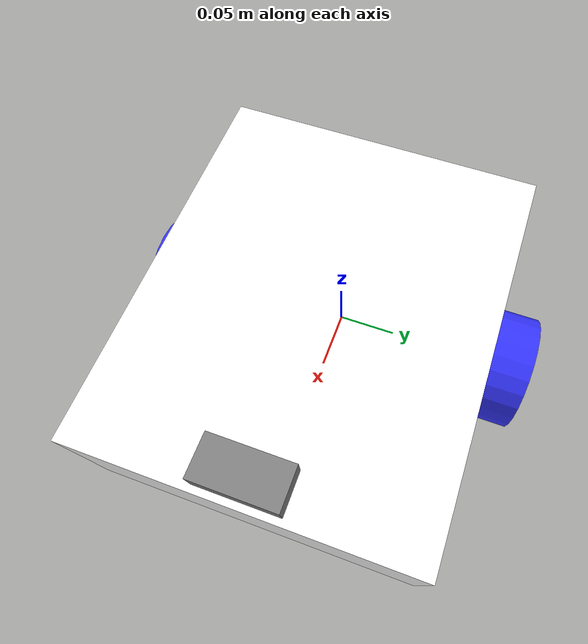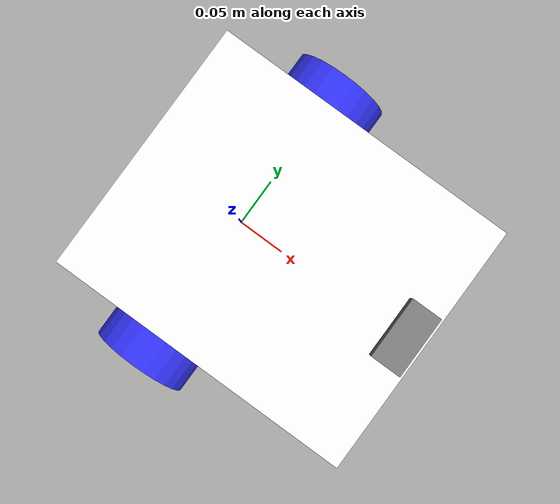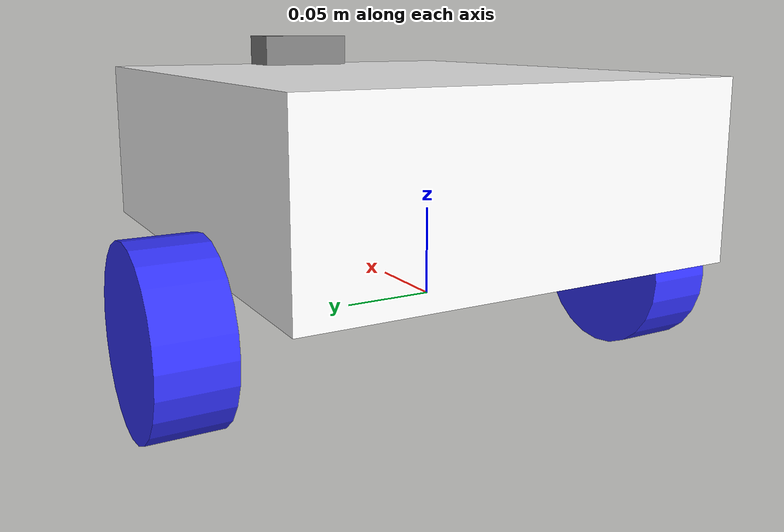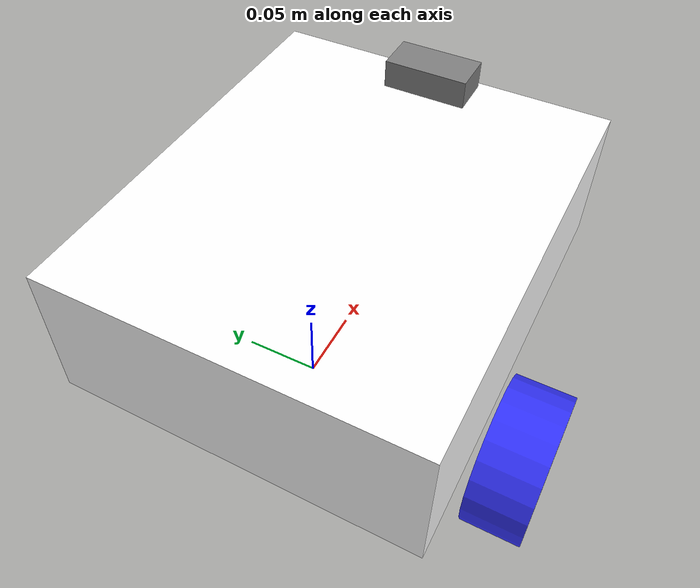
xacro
<?xml version="1.0"?>
<robot xmlns:xacro="http://www.ros.org/wiki/xacro" name="ball_tracker_robot">

  <!-- ========== MATERIALS ========== -->
  <material name="white">  <color rgba="1 1 1 1"/>        </material>
  <material name="blue">   <color rgba="0.2 0.2 1 1"/>    </material>
  <material name="black">  <color rgba="0 0 0 1"/>        </material>
  <material name="grey">   <color rgba="0.5 0.5 0.5 1"/> </material>

  <!-- ========== BASE LINK (rotation centre between drive wheels) ========== -->
  <link name="base_link"/>

  <!-- ========== CHASSIS ========== -->
  <joint name="chassis_joint" type="fixed">
    <parent link="base_link"/>
    <child  link="chassis"/>
    <origin xyz="-0.1 0 0"/>
  </joint>

  <link name="chassis">
    <visual>
      <origin xyz="0.15 0 0.075"/>
      <geometry><box size="0.30 0.25 0.10"/></geometry>
      <material name="white"/>
    </visual>
    <collision>
      <origin xyz="0.15 0 0.075"/>
      <geometry><box size="0.30 0.25 0.10"/></geometry>
    </collision>
    <inertial>
      <mass value="1.0"/>
      <origin xyz="0.15 0 0.075"/>
      <inertia ixx="1e-2" ixy="0" ixz="0" iyy="1e-2" iyz="0" izz="1e-2"/>
    </inertial>
  </link>

  <!-- ========== LEFT WHEEL ========== -->
  <joint name="left_wheel_joint" type="continuous">
    <parent link="base_link"/>
    <child  link="left_wheel"/>
    <origin xyz="0 0.15 0" rpy="-1.5708 0 0"/>
    <axis xyz="0 0 1"/>
  </joint>

  <link name="left_wheel">
    <visual>
      <geometry><cylinder length="0.04" radius="0.05"/></geometry>
      <material name="blue"/>
    </visual>
    <collision>
      <geometry><cylinder length="0.04" radius="0.05"/></geometry>
    </collision>
    <inertial>
      <mass value="0.1"/>
      <inertia ixx="1e-4" ixy="0" ixz="0" iyy="1e-4" iyz="0" izz="1e-4"/>
    </inertial>
  </link>

  <!-- ========== RIGHT WHEEL ========== -->
  <joint name="right_wheel_joint" type="continuous">
    <parent link="base_link"/>
    <child  link="right_wheel"/>
    <origin xyz="0 -0.15 0" rpy="1.5708 0 0"/>
    <axis xyz="0 0 -1"/>
  </joint>

  <link name="right_wheel">
    <visual>
      <geometry><cylinder length="0.04" radius="0.05"/></geometry>
      <material name="blue"/>
    </visual>
    <collision>
      <geometry><cylinder length="0.04" radius="0.05"/></geometry>
    </collision>
    <inertial>
      <mass value="0.1"/>
      <inertia ixx="1e-4" ixy="0" ixz="0" iyy="1e-4" iyz="0" izz="1e-4"/>
    </inertial>
  </link>

  <!-- ========== CASTER WHEEL ========== -->
  <joint name="caster_wheel_joint" type="fixed">
    <parent link="chassis"/>
    <child  link="caster_wheel"/>
    <origin xyz="0.24 0 0"/>
  </joint>

  <link name="caster_wheel">
    <visual>
      <geometry><sphere radius="0.025"/></geometry>
      <material name="black"/>
    </visual>
    <collision>
      <geometry><sphere radius="0.025"/></geometry>
    </collision>
    <inertial>
      <mass value="0.05"/>
      <inertia ixx="1e-5" ixy="0" ixz="0" iyy="1e-5" iyz="0" izz="1e-5"/>
    </inertial>
  </link>

  <!-- ========== CAMERA MOUNT ========== -->
  <joint name="camera_joint" type="fixed">
    <parent link="chassis"/>
    <child  link="camera_link"/>
    <origin xyz="0.28 0 0.13"/>
  </joint>

  <link name="camera_link">
    <visual>
      <geometry><box size="0.03 0.06 0.03"/></geometry>
      <material name="grey"/>
    </visual>
    <collision>
      <geometry><box size="0.03 0.06 0.03"/></geometry>
    </collision>
    <inertial>
      <mass value="0.01"/>
      <inertia ixx="1e-6" ixy="0" ixz="0" iyy="1e-6" iyz="0" izz="1e-6"/>
    </inertial>
  </link>

  <!-- Camera optical frame (Z forward, X right, Y down — ROS convention) -->
  <joint name="camera_optical_joint" type="fixed">
    <parent link="camera_link"/>
    <child  link="camera_optical_link"/>
    <origin rpy="-1.5708 0 -1.5708"/>
  </joint>

  <link name="camera_optical_link"/>

  <!-- ========== GAZEBO: COLOURS ========== -->
  <gazebo reference="chassis">      <material>Gazebo/White</material> </gazebo>
  <gazebo reference="left_wheel">   <material>Gazebo/Blue</material>  </gazebo>
  <gazebo reference="right_wheel">  <material>Gazebo/Blue</material>  </gazebo>
  <gazebo reference="caster_wheel">
    <material>Gazebo/Black</material>
    <mu1 value="0.001"/>
    <mu2 value="0.001"/>
  </gazebo>
  <gazebo reference="camera_link">  <material>Gazebo/Grey</material>  </gazebo>

  <!-- ========== GAZEBO: DIFF-DRIVE PLUGIN ========== -->
  <gazebo>
    <plugin name="diff_drive" filename="libgazebo_ros_diff_drive.so">
      <left_joint>left_wheel_joint</left_joint>
      <right_joint>right_wheel_joint</right_joint>
      <wheel_separation>0.30</wheel_separation>
      <wheel_diameter>0.10</wheel_diameter>
      <max_wheel_torque>20</max_wheel_torque>
      <max_wheel_acceleration>1.0</max_wheel_acceleration>
      <odometry_frame>odom</odometry_frame>
      <robot_base_frame>base_link</robot_base_frame>
      <publish_odom>true</publish_odom>
      <publish_odom_tf>true</publish_odom_tf>
      <publish_wheel_tf>true</publish_wheel_tf>
    </plugin>
  </gazebo>

  <!-- ========== GAZEBO: CAMERA PLUGIN ========== -->
  <gazebo reference="camera_link">
    <sensor type="camera" name="camera">
      <update_rate>10</update_rate>
      <camera name="head">
        <horizontal_fov>1.3962634</horizontal_fov>
        <image>
          <width>320</width>
          <height>240</height>
          <format>R8G8B8</format>
        </image>
        <clip>
          <near>0.02</near>
          <far>20</far>
        </clip>
      </camera>
      <plugin name="camera_controller" filename="libgazebo_ros_camera.so">
        <frame_name>camera_optical_link</frame_name>
        <min_depth>0.1</min_depth>
        <max_depth>20.0</max_depth>
      </plugin>
    </sensor>
  </gazebo>

</robot>
